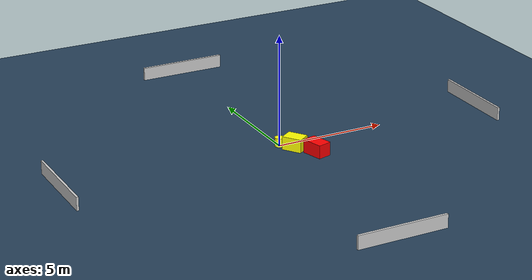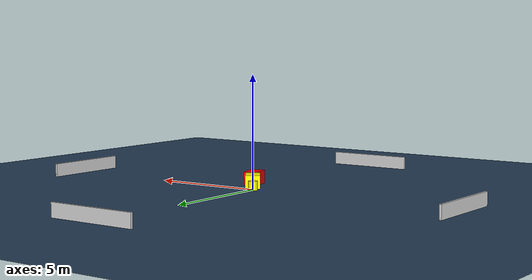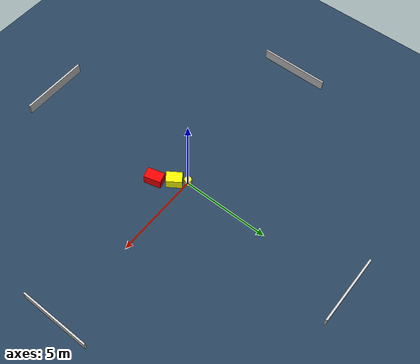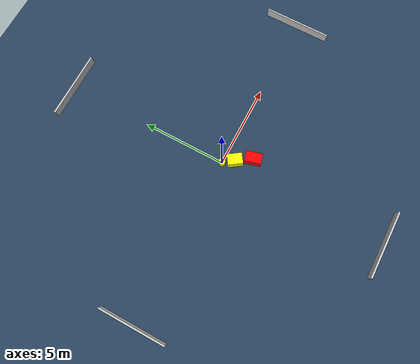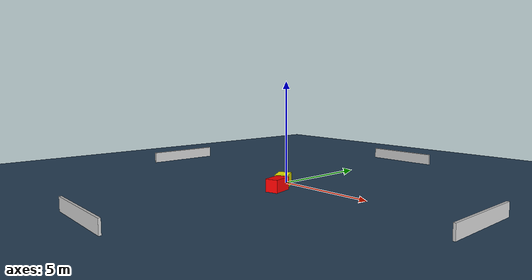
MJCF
<?xml version="1.0" ?>
<mujoco model="generated_environment">
  <option timestep="0.01" integrator="RK4" cone="elliptic"/>
  <default>
    <geom density="1"/>
  </default>
  <asset>
    <texture builtin="gradient" height="3072" name="skybox" rgb1="0.3 0.5 0.7" rgb2="0 0 0" type="skybox" width="512"/>
    <texture builtin="checker" height="300" name="groundplane" rgb1="0.2 0.3 0.4" rgb2="0.1 0.2 0.3" type="2d" width="300"/>
    <material name="groundplane" reflectance="0.2" texrepeat="5 5" texture="groundplane"/>
  </asset>
  <worldbody>
    <light dir="0 0 -1" directional="true" pos="0 0 1.5"/>
    <geom condim="3" friction="0.5 0.005 0.001" material="groundplane" name="floor" pos="0 0 0" size="0 0 0.05" type="plane"/>
    <body name="walls">
      <geom name="wall_1" condim="4" pos="-10.0 0.0 0.3" rgba="0.800000011920929 0.800000011920929 0.800000011920929 1.0" size="0.05 2.0 0.3" type="box"/>
      <geom name="wall_2" condim="4" pos="10.0 0.0 0.3" rgba="0.800000011920929 0.800000011920929 0.800000011920929 1.0" size="0.05 2.0 0.3" type="box"/>
      <geom name="wall_3" condim="4" pos="0.0 -10.0 0.3" rgba="0.800000011920929 0.800000011920929 0.800000011920929 1.0" size="2.0 0.05 0.3" type="box"/>
      <geom name="wall_4" condim="4" pos="0.0 10.0 0.3" rgba="0.800000011920929 0.800000011920929 0.800000011920929 1.0" size="2.0 0.05 0.3" type="box"/>
    </body>
    <body name="robot">
      <joint name="joint_x" type="slide" pos="0 0 0" axis="1 0 0"/>
      <joint name="joint_y" type="slide" pos="0 0 0" axis="0 1 0"/>
      <geom name="robot" type="cylinder" pos="0.0 0.0 0.2" size="0.2 0.2 0.0" mass="5.0" friction="1.0 0.005 0.0001" condim="4" rgba="1.0 1.0 0.0 1.0"/>
    </body>
    <body name="obstacle_1_movable">
      <geom name="obstacle_1_movable" condim="4" pos="0.43697862105816837 -0.5933136191878038 0.3" euler="0 0 214.7833023301301" friction="0.0 0.005 0.001" rgba="1.0 1.0 0.0 1.0" size="0.31822888729468934 0.4400620593408167 0.3" type="box" mass="0.1"/>
      <joint type="free"/>
    </body>
    <body name="obstacle_2_static">
      <geom name="obstacle_2_static" condim="4" pos="1.0121576071602936 -1.491116269218128 0.3" euler="0 0 285.2859694317913" friction="0.0 0.005 0.001" rgba="1.0 0.0 0.0 1.0" size="0.48825391402077645 0.3117340520612082 0.3" type="box"/>
    </body>
  </worldbody>
  <actuator>
    <motor name="actuator_x" joint="joint_x" gear="1" ctrlrange="-1 1"/>
    <motor name="actuator_y" joint="joint_y" gear="1" ctrlrange="-1 1"/>
  </actuator>
</mujoco>
